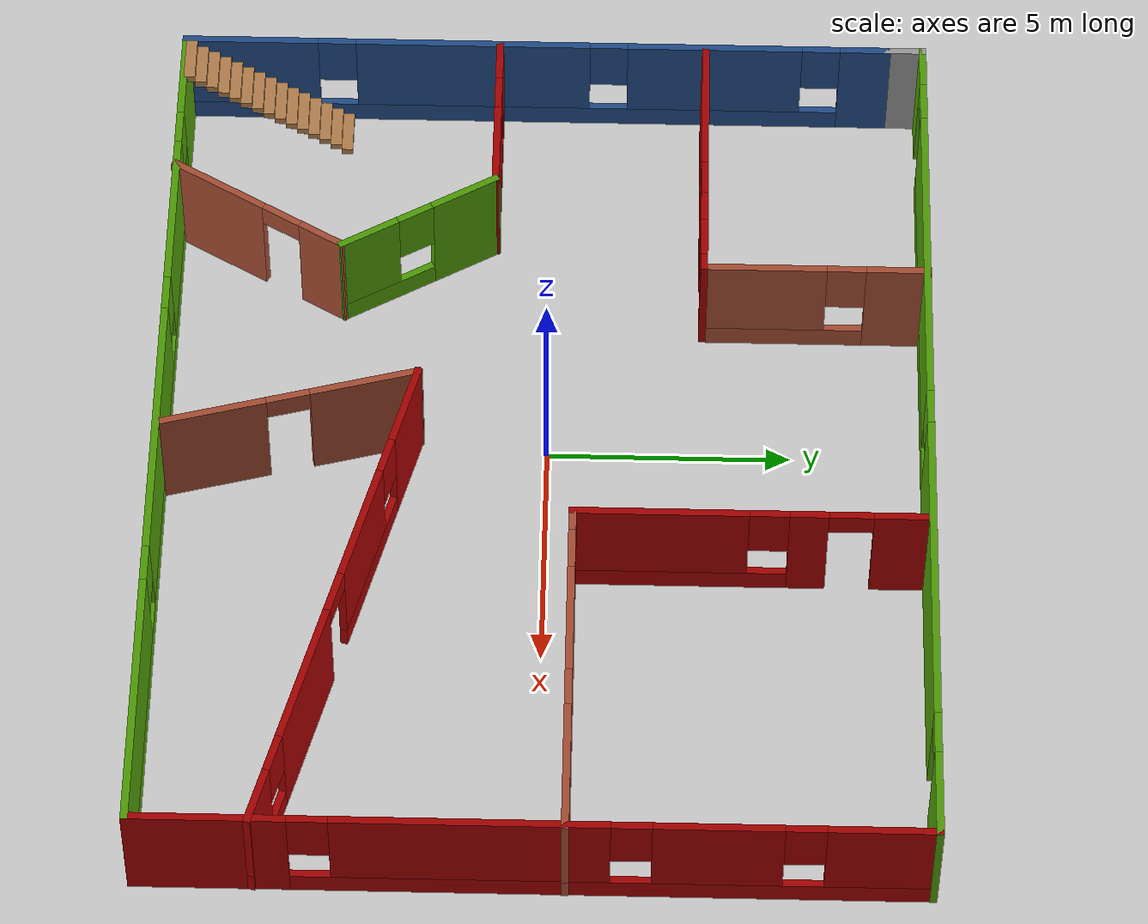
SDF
<sdf version="1.6">
 <world name="default">
  <model name="ground_plane">
   <static>1</static>
   <link name="link">
    <collision name="collision">
     <geometry><plane><normal>0 0 1</normal><size>100 100</size></plane></geometry>
     <surface>
      <contact><collide_bitmask>65535</collide_bitmask></contact>
      <friction><ode><mu>100</mu><mu2>50</mu2></ode></friction>
     </surface>
    </collision>
    <visual name="visual">
     <cast_shadows>0</cast_shadows>
     <geometry><plane><normal>0 0 1</normal><size>100 100</size></plane></geometry>
     <material>
      <script><uri>file://media/materials/scripts/gazebo.material</uri><name>Gazebo/Grey</name></script>
     </material>
    </visual>
   </link>
  </model>
  <model name="my_building">
   <pose>0.76926 -0.055675 0 0 -0 0</pose>
   <link name="Stairs_0">
    <visual name="Stairs_0_Visual_0">
     <pose>-9.13634 -4.39874 0.083333 0 -0 0</pose>
     <geometry><box><size>1 0.233333 0.166667</size></box></geometry>
     <material>
      <script><uri>file://media/materials/scripts/gazebo.material</uri><name>Gazebo/Wood</name></script>
      <ambient>0.360784 0.207843 0.4 1</ambient>
     </material>
     <meta><layer>0</layer></meta>
    </visual>
    <collision name="Stairs_0_Collision_0">
     <geometry><box><size>1 0.233333 0.166667</size></box></geometry>
     <pose>-9.13634 -4.39874 0.083333 0 -0 0</pose>
    </collision>
    <visual name="Stairs_0_Visual_1">
     <pose>-9.13634 -4.63207 0.25 0 -0 0</pose>
     <geometry><box><size>1 0.233333 0.166667</size></box></geometry>
     <material>
      <script><uri>file://media/materials/scripts/gazebo.material</uri><name>Gazebo/Wood</name></script>
      <ambient>0.360784 0.207843 0.4 1</ambient>
     </material>
     <meta><layer>0</layer></meta>
    </visual>
    <collision name="Stairs_0_Collision_1">
     <geometry><box><size>1 0.233333 0.166667</size></box></geometry>
     <pose>-9.13634 -4.63207 0.25 0 -0 0</pose>
    </collision>
    <visual name="Stairs_0_Visual_2">
     <pose>-9.13634 -4.8654 0.416667 0 -0 0</pose>
     <geometry><box><size>1 0.233333 0.166667</size></box></geometry>
     <material>
      <script><uri>file://media/materials/scripts/gazebo.material</uri><name>Gazebo/Wood</name></script>
      <ambient>0.360784 0.207843 0.4 1</ambient>
     </material>
     <meta><layer>0</layer></meta>
    </visual>
    <collision name="Stairs_0_Collision_2">
     <geometry><box><size>1 0.233333 0.166667</size></box></geometry>
     <pose>-9.13634 -4.8654 0.416667 0 -0 0</pose>
    </collision>
    <visual name="Stairs_0_Visual_3">
     <pose>-9.13634 -5.09873 0.583333 0 -0 0</pose>
     <geometry><box><size>1 0.233333 0.166667</size></box></geometry>
     <material>
      <script><uri>file://media/materials/scripts/gazebo.material</uri><name>Gazebo/Wood</name></script>
      <ambient>0.360784 0.207843 0.4 1</ambient>
     </material>
     <meta><layer>0</layer></meta>
    </visual>
    <collision name="Stairs_0_Collision_3">
     <geometry><box><size>1 0.233333 0.166667</size></box></geometry>
     <pose>-9.13634 -5.09873 0.583333 0 -0 0</pose>
    </collision>
    <visual name="Stairs_0_Visual_4">
     <pose>-9.13634 -5.33207 0.75 0 -0 0</pose>
     <geometry><box><size>1 0.233333 0.166667</size></box></geometry>
     <material>
      <script><uri>file://media/materials/scripts/gazebo.material</uri><name>Gazebo/Wood</name></script>
      <ambient>0.360784 0.207843 0.4 1</ambient>
     </material>
     <meta><layer>0</layer></meta>
    </visual>
    <collision name="Stairs_0_Collision_4">
     <geometry><box><size>1 0.233333 0.166667</size></box></geometry>
     <pose>-9.13634 -5.33207 0.75 0 -0 0</pose>
    </collision>
    <visual name="Stairs_0_Visual_5">
     <pose>-9.13634 -5.5654 0.916667 0 -0 0</pose>
     <geometry><box><size>1 0.233333 0.166667</size></box></geometry>
     <material>
      <script><uri>file://media/materials/scripts/gazebo.material</uri><name>Gazebo/Wood</name></script>
      <ambient>0.360784 0.207843 0.4 1</ambient>
     </material>
     <meta><layer>0</layer></meta>
    </visual>
    <collision name="Stairs_0_Collision_5">
     <geometry><box><size>1 0.233333 0.166667</size></box></geometry>
     <pose>-9.13634 -5.5654 0.916667 0 -0 0</pose>
    </collision>
    <visual name="Stairs_0_Visual_6">
     <pose>-9.13634 -5.79874 1.08333 0 -0 0</pose>
     <geometry><box><size>1 0.233333 0.166667</size></box></geometry>
     <material>
      <script><uri>file://media/materials/scripts/gazebo.material</uri><name>Gazebo/Wood</name></script>
      <ambient>0.360784 0.207843 0.4 1</ambient>
     </material>
     <meta><layer>0</layer></meta>
    </visual>
    <collision name="Stairs_0_Collision_6">
     <geometry><box><size>1 0.233333 0.166667</size></box></geometry>
     <pose>-9.13634 -5.79874 1.08333 0 -0 0</pose>
    </collision>
    <visual name="Stairs_0_Visual_7">
     <pose>-9.13634 -6.03207 1.25 0 -0 0</pose>
     <geometry><box><size>1 0.233333 0.166667</size></box></geometry>
     <material>
      <script><uri>file://media/materials/scripts/gazebo.material</uri><name>Gazebo/Wood</name></script>
      <ambient>0.360784 0.207843 0.4 1</ambient>
     </material>
     <meta><layer>0</layer></meta>
    </visual>
    <collision name="Stairs_0_Collision_7">
     <geometry><box><size>1 0.233333 0.166667</size></box></geometry>
     <pose>-9.13634 -6.03207 1.25 0 -0 0</pose>
    </collision>
    <visual name="Stairs_0_Visual_8">
     <pose>-9.13634 -6.2654 1.41667 0 -0 0</pose>
     <geometry><box><size>1 0.233333 0.166667</size></box></geometry>
     <material>
      <script><uri>file://media/materials/scripts/gazebo.material</uri><name>Gazebo/Wood</name></script>
      <ambient>0.360784 0.207843 0.4 1</ambient>
     </material>
     <meta><layer>0</layer></meta>
    </visual>
    <collision name="Stairs_0_Collision_8">
     <geometry><box><size>1 0.233333 0.166667</size></box></geometry>
     <pose>-9.13634 -6.2654 1.41667 0 -0 0</pose>
    </collision>
    <visual name="Stairs_0_Visual_9">
     <pose>-9.13634 -6.49873 1.58333 0 -0 0</pose>
     <geometry><box><size>1 0.233333 0.166667</size></box></geometry>
     <material>
      <script><uri>file://media/materials/scripts/gazebo.material</uri><name>Gazebo/Wood</name></script>
      <ambient>0.360784 0.207843 0.4 1</ambient>
     </material>
     <meta><layer>0</layer></meta>
    </visual>
    <collision name="Stairs_0_Collision_9">
     <geometry><box><size>1 0.233333 0.166667</size></box></geometry>
     <pose>-9.13634 -6.49873 1.58333 0 -0 0</pose>
    </collision>
    <visual name="Stairs_0_Visual_10">
     <pose>-9.13634 -6.73207 1.75 0 -0 0</pose>
     <geometry><box><size>1 0.233333 0.166667</size></box></geometry>
     <material>
      <script><uri>file://media/materials/scripts/gazebo.material</uri><name>Gazebo/Wood</name></script>
      <ambient>0.360784 0.207843 0.4 1</ambient>
     </material>
     <meta><layer>0</layer></meta>
    </visual>
    <collision name="Stairs_0_Collision_10">
     <geometry><box><size>1 0.233333 0.166667</size></box></geometry>
     <pose>-9.13634 -6.73207 1.75 0 -0 0</pose>
    </collision>
    <visual name="Stairs_0_Visual_11">
     <pose>-9.13634 -6.9654 1.91667 0 -0 0</pose>
     <geometry><box><size>1 0.233333 0.166667</size></box></geometry>
     <material>
      <script><uri>file://media/materials/scripts/gazebo.material</uri><name>Gazebo/Wood</name></script>
      <ambient>0.360784 0.207843 0.4 1</ambient>
     </material>
     <meta><layer>0</layer></meta>
    </visual>
    <collision name="Stairs_0_Collision_11">
     <geometry><box><size>1 0.233333 0.166667</size></box></geometry>
     <pose>-9.13634 -6.9654 1.91667 0 -0 0</pose>
    </collision>
    <visual name="Stairs_0_Visual_12">
     <pose>-9.13634 -7.19874 2.08333 0 -0 0</pose>
     <geometry><box><size>1 0.233333 0.166667</size></box></geometry>
     <material>
      <script><uri>file://media/materials/scripts/gazebo.material</uri><name>Gazebo/Wood</name></script>
      <ambient>0.360784 0.207843 0.4 1</ambient>
     </material>
     <meta><layer>0</layer></meta>
    </visual>
    <collision name="Stairs_0_Collision_12">
     <geometry><box><size>1 0.233333 0.166667</size></box></geometry>
     <pose>-9.13634 -7.19874 2.08333 0 -0 0</pose>
    </collision>
    <visual name="Stairs_0_Visual_13">
     <pose>-9.13634 -7.43207 2.25 0 -0 0</pose>
     <geometry><box><size>1 0.233333 0.166667</size></box></geometry>
     <material>
      <script><uri>file://media/materials/scripts/gazebo.material</uri><name>Gazebo/Wood</name></script>
      <ambient>0.360784 0.207843 0.4 1</ambient>
     </material>
     <meta><layer>0</layer></meta>
    </visual>
    <collision name="Stairs_0_Collision_13">
     <geometry><box><size>1 0.233333 0.166667</size></box></geometry>
     <pose>-9.13634 -7.43207 2.25 0 -0 0</pose>
    </collision>
    <visual name="Stairs_0_Visual_14">
     <pose>-9.13634 -7.6654 2.41667 0 -0 0</pose>
     <geometry><box><size>1 0.233333 0.166667</size></box></geometry>
     <material>
      <script><uri>file://media/materials/scripts/gazebo.material</uri><name>Gazebo/Wood</name></script>
      <ambient>0.360784 0.207843 0.4 1</ambient>
     </material>
     <meta><layer>0</layer></meta>
    </visual>
    <collision name="Stairs_0_Collision_14">
     <geometry><box><size>1 0.233333 0.166667</size></box></geometry>
     <pose>-9.13634 -7.6654 2.41667 0 -0 0</pose>
    </collision>
   </link>
   <link name="Wall_11">
    <pose>-9.6935 -0.366888 0 0 -0 -1.5708</pose>
    <visual name="Wall_11_Visual_0">
     <pose>-6.96463 0 1.25 0 -0 0</pose>
     <geometry><box><size>1.07073 0.15 2.5</size></box></geometry>
     <material>
      <script><uri>file://media/materials/scripts/gazebo.material</uri><name>Gazebo/Grey</name></script>
      <ambient>0.12549 0.290196 0.529412 1</ambient>
     </material>
     <meta><layer>0</layer></meta>
    </visual>
    <collision name="Wall_11_Collision_0">
     <geometry><box><size>1.07073 0.15 2.5</size></box></geometry>
     <pose>-6.96463 0 1.25 0 -0 0</pose>
    </collision>
    <visual name="Wall_11_Visual_1">
     <pose>0.535368 0 0.25 0 -0 0</pose>
     <geometry><box><size>13.9293 0.15 0.5</size></box></geometry>
     <material>
      <script><uri>file://media/materials/scripts/gazebo.material</uri><name>Gazebo/Grey</name></script>
      <ambient>0.12549 0.290196 0.529412 1</ambient>
     </material>
     <meta><layer>0</layer></meta>
    </visual>
    <collision name="Wall_11_Collision_1">
     <geometry><box><size>13.9293 0.15 0.5</size></box></geometry>
     <pose>0.535368 0 0.25 0 -0 0</pose>
    </collision>
    <visual name="Wall_11_Visual_2">
     <pose>-3.78462 0 1.5 0 -0 0</pose>
     <geometry><box><size>3.68928 0.15 2</size></box></geometry>
     <material>
      <script><uri>file://media/materials/scripts/gazebo.material</uri><name>Gazebo/Grey</name></script>
      <ambient>0.12549 0.290196 0.529412 1</ambient>
     </material>
     <meta><layer>0</layer></meta>
    </visual>
    <collision name="Wall_11_Collision_2">
     <geometry><box><size>3.68928 0.15 2</size></box></geometry>
     <pose>-3.78462 0 1.5 0 -0 0</pose>
    </collision>
    <visual name="Wall_11_Visual_3">
     <pose>1.34307 0 1.5 0 -0 0</pose>
     <geometry><box><size>4.9661 0.15 2</size></box></geometry>
     <material>
      <script><uri>file://media/materials/scripts/gazebo.material</uri><name>Gazebo/Grey</name></script>
      <ambient>0.12549 0.290196 0.529412 1</ambient>
     </material>
     <meta><layer>0</layer></meta>
    </visual>
    <collision name="Wall_11_Collision_3">
     <geometry><box><size>4.9661 0.15 2</size></box></geometry>
     <pose>1.34307 0 1.5 0 -0 0</pose>
    </collision>
    <visual name="Wall_11_Visual_4">
     <pose>6.06306 0 1.5 0 -0 0</pose>
     <geometry><box><size>2.87388 0.15 2</size></box></geometry>
     <material>
      <script><uri>file://media/materials/scripts/gazebo.material</uri><name>Gazebo/Grey</name></script>
      <ambient>0.12549 0.290196 0.529412 1</ambient>
     </material>
     <meta><layer>0</layer></meta>
    </visual>
    <collision name="Wall_11_Collision_4">
     <geometry><box><size>2.87388 0.15 2</size></box></geometry>
     <pose>6.06306 0 1.5 0 -0 0</pose>
    </collision>
    <visual name="Wall_11_Visual_5">
     <pose>-6.02926 0 1.9 0 -0 0</pose>
     <geometry><box><size>0.8 0.15 1.2</size></box></geometry>
     <material>
      <script><uri>file://media/materials/scripts/gazebo.material</uri><name>Gazebo/Grey</name></script>
      <ambient>0.12549 0.290196 0.529412 1</ambient>
     </material>
     <meta><layer>0</layer></meta>
    </visual>
    <collision name="Wall_11_Collision_5">
     <geometry><box><size>0.8 0.15 1.2</size></box></geometry>
     <pose>-6.02926 0 1.9 0 -0 0</pose>
    </collision>
    <visual name="Wall_11_Visual_6">
     <pose>-1.53998 0 1.9 0 -0 0</pose>
     <geometry><box><size>0.8 0.15 1.2</size></box></geometry>
     <material>
      <script><uri>file://media/materials/scripts/gazebo.material</uri><name>Gazebo/Grey</name></script>
      <ambient>0.12549 0.290196 0.529412 1</ambient>
     </material>
     <meta><layer>0</layer></meta>
    </visual>
    <collision name="Wall_11_Collision_6">
     <geometry><box><size>0.8 0.15 1.2</size></box></geometry>
     <pose>-1.53998 0 1.9 0 -0 0</pose>
    </collision>
    <visual name="Wall_11_Visual_7">
     <pose>4.22612 0 1.9 0 -0 0</pose>
     <geometry><box><size>0.8 0.15 1.2</size></box></geometry>
     <material>
      <script><uri>file://media/materials/scripts/gazebo.material</uri><name>Gazebo/Grey</name></script>
      <ambient>0.12549 0.290196 0.529412 1</ambient>
     </material>
     <meta><layer>0</layer></meta>
    </visual>
    <collision name="Wall_11_Collision_7">
     <geometry><box><size>0.8 0.15 1.2</size></box></geometry>
     <pose>4.22612 0 1.9 0 -0 0</pose>
    </collision>
   </link>
   <link name="Wall_12">
    <pose>-0.018495 -7.79189 0 0 -0 0</pose>
    <visual name="Wall_12_Visual_0">
     <pose>-8.71079 0 1.25 0 -0 0</pose>
     <geometry><box><size>2.07843 0.15 2.5</size></box></geometry>
     <material>
      <script><uri>file://media/materials/scripts/gazebo.material</uri><name>Gazebo/Grey</name></script>
      <ambient>0.305882 0.603922 0.0235294 1</ambient>
     </material>
     <meta><layer>0</layer></meta>
    </visual>
    <collision name="Wall_12_Collision_0">
     <geometry><box><size>2.07843 0.15 2.5</size></box></geometry>
     <pose>-8.71079 0 1.25 0 -0 0</pose>
    </collision>
    <visual name="Wall_12_Visual_1">
     <pose>1.03921 0 0.25 0 -0 0</pose>
     <geometry><box><size>17.4216 0.15 0.5</size></box></geometry>
     <material>
      <script><uri>file://media/materials/scripts/gazebo.material</uri><name>Gazebo/Grey</name></script>
      <ambient>0.305882 0.603922 0.0235294 1</ambient>
     </material>
     <meta><layer>0</layer></meta>
    </visual>
    <collision name="Wall_12_Collision_1">
     <geometry><box><size>17.4216 0.15 0.5</size></box></geometry>
     <pose>1.03921 0 0.25 0 -0 0</pose>
    </collision>
    <visual name="Wall_12_Visual_2">
     <pose>-5.09053 0 1.5 0 -0 0</pose>
     <geometry><box><size>3.56208 0.15 2</size></box></geometry>
     <material>
      <script><uri>file://media/materials/scripts/gazebo.material</uri><name>Gazebo/Grey</name></script>
      <ambient>0.305882 0.603922 0.0235294 1</ambient>
     </material>
     <meta><layer>0</layer></meta>
    </visual>
    <collision name="Wall_12_Collision_2">
     <geometry><box><size>3.56208 0.15 2</size></box></geometry>
     <pose>-5.09053 0 1.5 0 -0 0</pose>
    </collision>
    <visual name="Wall_12_Visual_3">
     <pose>0.449657 0 1.5 0 -0 0</pose>
     <geometry><box><size>5.9183 0.15 2</size></box></geometry>
     <material>
      <script><uri>file://media/materials/scripts/gazebo.material</uri><name>Gazebo/Grey</name></script>
      <ambient>0.305882 0.603922 0.0235294 1</ambient>
     </material>
     <meta><layer>0</layer></meta>
    </visual>
    <collision name="Wall_12_Collision_3">
     <geometry><box><size>5.9183 0.15 2</size></box></geometry>
     <pose>0.449657 0 1.5 0 -0 0</pose>
    </collision>
    <visual name="Wall_12_Visual_4">
     <pose>6.9794 0 1.5 0 -0 0</pose>
     <geometry><box><size>5.54119 0.15 2</size></box></geometry>
     <material>
      <script><uri>file://media/materials/scripts/gazebo.material</uri><name>Gazebo/Grey</name></script>
      <ambient>0.305882 0.603922 0.0235294 1</ambient>
     </material>
     <meta><layer>0</layer></meta>
    </visual>
    <collision name="Wall_12_Collision_4">
     <geometry><box><size>5.54119 0.15 2</size></box></geometry>
     <pose>6.9794 0 1.5 0 -0 0</pose>
    </collision>
    <visual name="Wall_12_Visual_5">
     <pose>-7.27157 0 1.9 0 -0 0</pose>
     <geometry><box><size>0.8 0.15 1.2</size></box></geometry>
     <material>
      <script><uri>file://media/materials/scripts/gazebo.material</uri><name>Gazebo/Grey</name></script>
      <ambient>0.305882 0.603922 0.0235294 1</ambient>
     </material>
     <meta><layer>0</layer></meta>
    </visual>
    <collision name="Wall_12_Collision_5">
     <geometry><box><size>0.8 0.15 1.2</size></box></geometry>
     <pose>-7.27157 0 1.9 0 -0 0</pose>
    </collision>
    <visual name="Wall_12_Visual_6">
     <pose>-2.90949 0 1.9 0 -0 0</pose>
     <geometry><box><size>0.8 0.15 1.2</size></box></geometry>
     <material>
      <script><uri>file://media/materials/scripts/gazebo.material</uri><name>Gazebo/Grey</name></script>
      <ambient>0.305882 0.603922 0.0235294 1</ambient>
     </material>
     <meta><layer>0</layer></meta>
    </visual>
    <collision name="Wall_12_Collision_6">
     <geometry><box><size>0.8 0.15 1.2</size></box></geometry>
     <pose>-2.90949 0 1.9 0 -0 0</pose>
    </collision>
    <visual name="Wall_12_Visual_7">
     <pose>3.80881 0 1.9 0 -0 0</pose>
     <geometry><box><size>0.8 0.15 1.2</size></box></geometry>
     <material>
      <script><uri>file://media/materials/scripts/gazebo.material</uri><name>Gazebo/Grey</name></script>
      <ambient>0.305882 0.603922 0.0235294 1</ambient>
     </material>
     <meta><layer>0</layer></meta>
    </visual>
    <collision name="Wall_12_Collision_7">
     <geometry><box><size>0.8 0.15 1.2</size></box></geometry>
     <pose>3.80881 0 1.9 0 -0 0</pose>
    </collision>
   </link>
   <link name="Wall_13">
    <pose>9.6565 0.008112 0 0 -0 1.5708</pose>
    <visual name="Wall_13_Visual_0">
     <pose>-6.28991 0 1.25 0 -0 0</pose>
     <geometry><box><size>3.17019 0.15 2.5</size></box></geometry>
     <material>
      <script><uri>file://media/materials/scripts/gazebo.material</uri><name>Gazebo/Grey</name></script>
      <ambient>0.643137 0 0 1</ambient>
     </material>
     <meta><layer>0</layer></meta>
    </visual>
    <collision name="Wall_13_Collision_0">
     <geometry><box><size>3.17019 0.15 2.5</size></box></geometry>
     <pose>-6.28991 0 1.25 0 -0 0</pose>
    </collision>
    <visual name="Wall_13_Visual_1">
     <pose>1.58509 0 0.25 0 -0 0</pose>
     <geometry><box><size>12.5798 0.15 0.5</size></box></geometry>
     <material>
      <script><uri>file://media/materials/scripts/gazebo.material</uri><name>Gazebo/Grey</name></script>
      <ambient>0.643137 0 0 1</ambient>
     </material>
     <meta><layer>0</layer></meta>
    </visual>
    <collision name="Wall_13_Collision_1">
     <geometry><box><size>12.5798 0.15 0.5</size></box></geometry>
     <pose>1.58509 0 0.25 0 -0 0</pose>
    </collision>
    <visual name="Wall_13_Visual_2">
     <pose>-1.19981 0 1.5 0 -0 0</pose>
     <geometry><box><size>5.41 0.15 2</size></box></geometry>
     <material>
      <script><uri>file://media/materials/scripts/gazebo.material</uri><name>Gazebo/Grey</name></script>
      <ambient>0.643137 0 0 1</ambient>
     </material>
     <meta><layer>0</layer></meta>
    </visual>
    <collision name="Wall_13_Collision_2">
     <geometry><box><size>5.41 0.15 2</size></box></geometry>
     <pose>-1.19981 0 1.5 0 -0 0</pose>
    </collision>
    <visual name="Wall_13_Visual_3">
     <pose>3.578 0 1.5 0 -0 0</pose>
     <geometry><box><size>2.54562 0.15 2</size></box></geometry>
     <material>
      <script><uri>file://media/materials/scripts/gazebo.material</uri><name>Gazebo/Grey</name></script>
      <ambient>0.643137 0 0 1</ambient>
     </material>
     <meta><layer>0</layer></meta>
    </visual>
    <collision name="Wall_13_Collision_3">
     <geometry><box><size>2.54562 0.15 2</size></box></geometry>
     <pose>3.578 0 1.5 0 -0 0</pose>
    </collision>
    <visual name="Wall_13_Visual_4">
     <pose>6.76291 0 1.5 0 -0 0</pose>
     <geometry><box><size>2.22418 0.15 2</size></box></geometry>
     <material>
      <script><uri>file://media/materials/scripts/gazebo.material</uri><name>Gazebo/Grey</name></script>
      <ambient>0.643137 0 0 1</ambient>
     </material>
     <meta><layer>0</layer></meta>
    </visual>
    <collision name="Wall_13_Collision_4">
     <geometry><box><size>2.22418 0.15 2</size></box></geometry>
     <pose>6.76291 0 1.5 0 -0 0</pose>
    </collision>
    <visual name="Wall_13_Visual_5">
     <pose>-4.30481 0 1.9 0 -0 0</pose>
     <geometry><box><size>0.8 0.15 1.2</size></box></geometry>
     <material>
      <script><uri>file://media/materials/scripts/gazebo.material</uri><name>Gazebo/Grey</name></script>
      <ambient>0.643137 0 0 1</ambient>
     </material>
     <meta><layer>0</layer></meta>
    </visual>
    <collision name="Wall_13_Collision_5">
     <geometry><box><size>0.8 0.15 1.2</size></box></geometry>
     <pose>-4.30481 0 1.9 0 -0 0</pose>
    </collision>
    <visual name="Wall_13_Visual_6">
     <pose>1.90519 0 1.9 0 -0 0</pose>
     <geometry><box><size>0.8 0.15 1.2</size></box></geometry>
     <material>
      <script><uri>file://media/materials/scripts/gazebo.material</uri><name>Gazebo/Grey</name></script>
      <ambient>0.643137 0 0 1</ambient>
     </material>
     <meta><layer>0</layer></meta>
    </visual>
    <collision name="Wall_13_Collision_6">
     <geometry><box><size>0.8 0.15 1.2</size></box></geometry>
     <pose>1.90519 0 1.9 0 -0 0</pose>
    </collision>
    <visual name="Wall_13_Visual_7">
     <pose>5.25082 0 1.9 0 -0 0</pose>
     <geometry><box><size>0.8 0.15 1.2</size></box></geometry>
     <material>
      <script><uri>file://media/materials/scripts/gazebo.material</uri><name>Gazebo/Grey</name></script>
      <ambient>0.643137 0 0 1</ambient>
     </material>
     <meta><layer>0</layer></meta>
    </visual>
    <collision name="Wall_13_Collision_7">
     <geometry><box><size>0.8 0.15 1.2</size></box></geometry>
     <pose>5.25082 0 1.9 0 -0 0</pose>
    </collision>
   </link>
   <link name="Wall_14">
    <pose>-0.018495 7.80811 0 0 -0 3.14159</pose>
    <visual name="Wall_14_Visual_0">
     <pose>-8.8108 0 1.25 0 -0 0</pose>
     <geometry><box><size>1.8784 0.15 2.5</size></box></geometry>
     <material>
      <script><uri>file://media/materials/scripts/gazebo.material</uri><name>Gazebo/Grey</name></script>
      <ambient>0.305882 0.603922 0.0235294 1</ambient>
     </material>
     <meta><layer>0</layer></meta>
    </visual>
    <collision name="Wall_14_Collision_0">
     <geometry><box><size>1.8784 0.15 2.5</size></box></geometry>
     <pose>-8.8108 0 1.25 0 -0 0</pose>
    </collision>
    <visual name="Wall_14_Visual_1">
     <pose>-3.49632 0 1.25 0 -0 0</pose>
     <geometry><box><size>6.95057 0.15 2.5</size></box></geometry>
     <material>
      <script><uri>file://media/materials/scripts/gazebo.material</uri><name>Gazebo/Grey</name></script>
      <ambient>0.305882 0.603922 0.0235294 1</ambient>
     </material>
     <meta><layer>0</layer></meta>
    </visual>
    <collision name="Wall_14_Collision_1">
     <geometry><box><size>6.95057 0.15 2.5</size></box></geometry>
     <pose>-3.49632 0 1.25 0 -0 0</pose>
    </collision>
    <visual name="Wall_14_Visual_2">
     <pose>9.25613 0 1.25 0 -0 0</pose>
     <geometry><box><size>0.987737 0.15 2.5</size></box></geometry>
     <material>
      <script><uri>file://media/materials/scripts/gazebo.material</uri><name>Gazebo/Grey</name></script>
      <ambient>0.305882 0.603922 0.0235294 1</ambient>
     </material>
     <meta><layer>0</layer></meta>
    </visual>
    <collision name="Wall_14_Collision_2">
     <geometry><box><size>0.987737 0.15 2.5</size></box></geometry>
     <pose>9.25613 0 1.25 0 -0 0</pose>
    </collision>
    <visual name="Wall_14_Visual_3">
     <pose>3.92061 0 0.25 0 -0 0</pose>
     <geometry><box><size>7.8833 0.15 0.5</size></box></geometry>
     <material>
      <script><uri>file://media/materials/scripts/gazebo.material</uri><name>Gazebo/Grey</name></script>
      <ambient>0.305882 0.603922 0.0235294 1</ambient>
     </material>
     <meta><layer>0</layer></meta>
    </visual>
    <collision name="Wall_14_Collision_3">
     <geometry><box><size>7.8833 0.15 0.5</size></box></geometry>
     <pose>3.92061 0 0.25 0 -0 0</pose>
    </collision>
    <visual name="Wall_14_Visual_4">
     <pose>4.32061 0 1.5 0 -0 0</pose>
     <geometry><box><size>7.0833 0.15 2</size></box></geometry>
     <material>
      <script><uri>file://media/materials/scripts/gazebo.material</uri><name>Gazebo/Grey</name></script>
      <ambient>0.305882 0.603922 0.0235294 1</ambient>
     </material>
     <meta><layer>0</layer></meta>
    </visual>
    <collision name="Wall_14_Collision_4">
     <geometry><box><size>7.0833 0.15 2</size></box></geometry>
     <pose>4.32061 0 1.5 0 -0 0</pose>
    </collision>
    <visual name="Wall_14_Visual_5">
     <pose>0.378965 0 1.9 0 -0 0</pose>
     <geometry><box><size>0.8 0.15 1.2</size></box></geometry>
     <material>
      <script><uri>file://media/materials/scripts/gazebo.material</uri><name>Gazebo/Grey</name></script>
      <ambient>0.305882 0.603922 0.0235294 1</ambient>
     </material>
     <meta><layer>0</layer></meta>
    </visual>
    <collision name="Wall_14_Collision_5">
     <geometry><box><size>0.8 0.15 1.2</size></box></geometry>
     <pose>0.378965 0 1.9 0 -0 0</pose>
    </collision>
    <visual name="Wall_14_Visual_6">
     <pose>-7.4216 0 2.25 0 -0 0</pose>
     <geometry><box><size>0.9 0.15 0.5</size></box></geometry>
     <material>
      <script><uri>file://media/materials/scripts/gazebo.material</uri><name>Gazebo/Grey</name></script>
      <ambient>0.305882 0.603922 0.0235294 1</ambient>
     </material>
     <meta><layer>0</layer></meta>
    </visual>
    <collision name="Wall_14_Collision_6">
     <geometry><box><size>0.9 0.15 0.5</size></box></geometry>
     <pose>-7.4216 0 2.25 0 -0 0</pose>
    </collision>
    <visual name="Wall_14_Visual_7">
     <pose>8.31226 0 2.25 0 -0 0</pose>
     <geometry><box><size>0.9 0.15 0.5</size></box></geometry>
     <material>
      <script><uri>file://media/materials/scripts/gazebo.material</uri><name>Gazebo/Grey</name></script>
      <ambient>0.305882 0.603922 0.0235294 1</ambient>
     </material>
     <meta><layer>0</layer></meta>
    </visual>
    <collision name="Wall_14_Collision_7">
     <geometry><box><size>0.9 0.15 0.5</size></box></geometry>
     <pose>8.31226 0 2.25 0 -0 0</pose>
    </collision>
   </link>
   <link name="Wall_16">
    <collision name="Wall_16_Collision">
     <geometry><box><size>0.9 0.15 2.5</size></box></geometry>
     <pose>0 0 1.25 0 -0 0</pose>
    </collision>
    <visual name="Wall_16_Visual">
     <pose>0 0 1.25 0 -0 0</pose>
     <geometry><box><size>0.9 0.15 2.5</size></box></geometry>
     <material>
      <script><uri>file://media/materials/scripts/gazebo.material</uri><name>Gazebo/Grey</name></script>
      <ambient>1 1 1 1</ambient>
     </material>
     <meta><layer>0</layer></meta>
    </visual>
    <pose>-9.6935 7.43311 0 0 -0 -1.5708</pose>
   </link>
   <link name="Wall_18">
    <pose>-3.83988 5.52664 0 0 -0 -1.5708</pose>
    <visual name="Wall_18_Visual_0">
     <pose>-1.70027 0 1.25 0 -0 0</pose>
     <geometry><box><size>1.34946 0.15 2.5</size></box></geometry>
     <material>
      <script><uri>file://media/materials/scripts/gazebo.material</uri><name>Gazebo/Bricks</name></script>
      <ambient>0.12549 0.290196 0.529412 1</ambient>
     </material>
     <meta><layer>0</layer></meta>
    </visual>
    <collision name="Wall_18_Collision_0">
     <geometry><box><size>1.34946 0.15 2.5</size></box></geometry>
     <pose>-1.70027 0 1.25 0 -0 0</pose>
    </collision>
    <visual name="Wall_18_Visual_1">
     <pose>0.674728 0 0.25 0 -0 0</pose>
     <geometry><box><size>3.40054 0.15 0.5</size></box></geometry>
     <material>
      <script><uri>file://media/materials/scripts/gazebo.material</uri><name>Gazebo/Bricks</name></script>
      <ambient>0.12549 0.290196 0.529412 1</ambient>
     </material>
     <meta><layer>0</layer></meta>
    </visual>
    <collision name="Wall_18_Collision_1">
     <geometry><box><size>3.40054 0.15 0.5</size></box></geometry>
     <pose>0.674728 0 0.25 0 -0 0</pose>
    </collision>
    <visual name="Wall_18_Visual_2">
     <pose>1.07473 0 1.5 0 -0 0</pose>
     <geometry><box><size>2.60054 0.15 2</size></box></geometry>
     <material>
      <script><uri>file://media/materials/scripts/gazebo.material</uri><name>Gazebo/Bricks</name></script>
      <ambient>0.12549 0.290196 0.529412 1</ambient>
     </material>
     <meta><layer>0</layer></meta>
    </visual>
    <collision name="Wall_18_Collision_2">
     <geometry><box><size>2.60054 0.15 2</size></box></geometry>
     <pose>1.07473 0 1.5 0 -0 0</pose>
    </collision>
    <visual name="Wall_18_Visual_3">
     <pose>-0.625544 0 1.9 0 -0 0</pose>
     <geometry><box><size>0.8 0.15 1.2</size></box></geometry>
     <material>
      <script><uri>file://media/materials/scripts/gazebo.material</uri><name>Gazebo/Bricks</name></script>
      <ambient>0.12549 0.290196 0.529412 1</ambient>
     </material>
     <meta><layer>0</layer></meta>
    </visual>
    <collision name="Wall_18_Collision_3">
     <geometry><box><size>0.8 0.15 1.2</size></box></geometry>
     <pose>-0.625544 0 1.9 0 -0 0</pose>
    </collision>
   </link>
   <link name="Wall_19">
    <pose>-6.76488 3.22664 0 0 -0 3.14159</pose>
    <visual name="Wall_19_Visual_0">
     <pose>-2.79615 0 1.25 0 -0 0</pose>
     <geometry><box><size>0.407708 0.15 2.5</size></box></geometry>
     <material>
      <script><uri>file://media/materials/scripts/gazebo.material</uri><name>Gazebo/Grey</name></script>
      <ambient>0.643137 0 0 1</ambient>
     </material>
     <meta><layer>0</layer></meta>
    </visual>
    <collision name="Wall_19_Collision_0">
     <geometry><box><size>0.407708 0.15 2.5</size></box></geometry>
     <pose>-2.79615 0 1.25 0 -0 0</pose>
    </collision>
    <visual name="Wall_19_Visual_1">
     <pose>-1.33529 0 1.25 0 -0 0</pose>
     <geometry><box><size>0.714 0.15 2.5</size></box></geometry>
     <material>
      <script><uri>file://media/materials/scripts/gazebo.material</uri><name>Gazebo/Grey</name></script>
      <ambient>0.643137 0 0 1</ambient>
     </material>
     <meta><layer>0</layer></meta>
    </visual>
    <collision name="Wall_19_Collision_1">
     <geometry><box><size>0.714 0.15 2.5</size></box></geometry>
     <pose>-1.33529 0 1.25 0 -0 0</pose>
    </collision>
    <visual name="Wall_19_Visual_2">
     <pose>1.01085 0 0.25 0 -0 0</pose>
     <geometry><box><size>3.97829 0.15 0.5</size></box></geometry>
     <material>
      <script><uri>file://media/materials/scripts/gazebo.material</uri><name>Gazebo/Grey</name></script>
      <ambient>0.643137 0 0 1</ambient>
     </material>
     <meta><layer>0</layer></meta>
    </visual>
    <collision name="Wall_19_Collision_2">
     <geometry><box><size>3.97829 0.15 0.5</size></box></geometry>
     <pose>1.01085 0 0.25 0 -0 0</pose>
    </collision>
    <visual name="Wall_19_Visual_3">
     <pose>1.41085 0 1.5 0 -0 0</pose>
     <geometry><box><size>3.17829 0.15 2</size></box></geometry>
     <material>
      <script><uri>file://media/materials/scripts/gazebo.material</uri><name>Gazebo/Grey</name></script>
      <ambient>0.643137 0 0 1</ambient>
     </material>
     <meta><layer>0</layer></meta>
    </visual>
    <collision name="Wall_19_Collision_3">
     <geometry><box><size>3.17829 0.15 2</size></box></geometry>
     <pose>1.41085 0 1.5 0 -0 0</pose>
    </collision>
    <visual name="Wall_19_Visual_4">
     <pose>-0.578292 0 1.9 0 -0 0</pose>
     <geometry><box><size>0.8 0.15 1.2</size></box></geometry>
     <material>
      <script><uri>file://media/materials/scripts/gazebo.material</uri><name>Gazebo/Grey</name></script>
      <ambient>0.643137 0 0 1</ambient>
     </material>
     <meta><layer>0</layer></meta>
    </visual>
    <collision name="Wall_19_Collision_4">
     <geometry><box><size>0.8 0.15 1.2</size></box></geometry>
     <pose>-0.578292 0 1.9 0 -0 0</pose>
    </collision>
    <visual name="Wall_19_Visual_5">
     <pose>-2.14229 0 2.25 0 -0 0</pose>
     <geometry><box><size>0.9 0.15 0.5</size></box></geometry>
     <material>
      <script><uri>file://media/materials/scripts/gazebo.material</uri><name>Gazebo/Grey</name></script>
      <ambient>0.643137 0 0 1</ambient>
     </material>
     <meta><layer>0</layer></meta>
    </visual>
    <collision name="Wall_19_Collision_5">
     <geometry><box><size>0.9 0.15 0.5</size></box></geometry>
     <pose>-2.14229 0 2.25 0 -0 0</pose>
    </collision>
   </link>
   <link name="Wall_21">
    <pose>2.33116 4.19037 0 0 -0 -1.5708</pose>
    <visual name="Wall_21_Visual_0">
     <pose>-3.03796 0 1.25 0 -0 0</pose>
     <geometry><box><size>1.17407 0.15 2.5</size></box></geometry>
     <material>
      <script><uri>file://media/materials/scripts/gazebo.material</uri><name>Gazebo/Grey</name></script>
      <ambient>0.643137 0 0 1</ambient>
     </material>
     <meta><layer>0</layer></meta>
    </visual>
    <collision name="Wall_21_Collision_0">
     <geometry><box><size>1.17407 0.15 2.5</size></box></geometry>
     <pose>-3.03796 0 1.25 0 -0 0</pose>
    </collision>
    <visual name="Wall_21_Visual_1">
     <pose>-1.15994 0 1.25 0 -0 0</pose>
     <geometry><box><size>0.781978 0.15 2.5</size></box></geometry>
     <material>
      <script><uri>file://media/materials/scripts/gazebo.material</uri><name>Gazebo/Grey</name></script>
      <ambient>0.643137 0 0 1</ambient>
     </material>
     <meta><layer>0</layer></meta>
    </visual>
    <collision name="Wall_21_Collision_1">
     <geometry><box><size>0.781978 0.15 2.5</size></box></geometry>
     <pose>-1.15994 0 1.25 0 -0 0</pose>
    </collision>
    <visual name="Wall_21_Visual_2">
     <pose>1.42803 0 0.25 0 -0 0</pose>
     <geometry><box><size>4.39395 0.15 0.5</size></box></geometry>
     <material>
      <script><uri>file://media/materials/scripts/gazebo.material</uri><name>Gazebo/Grey</name></script>
      <ambient>0.643137 0 0 1</ambient>
     </material>
     <meta><layer>0</layer></meta>
    </visual>
    <collision name="Wall_21_Collision_2">
     <geometry><box><size>4.39395 0.15 0.5</size></box></geometry>
     <pose>1.42803 0 0.25 0 -0 0</pose>
    </collision>
    <visual name="Wall_21_Visual_3">
     <pose>1.82803 0 1.5 0 -0 0</pose>
     <geometry><box><size>3.59395 0.15 2</size></box></geometry>
     <material>
      <script><uri>file://media/materials/scripts/gazebo.material</uri><name>Gazebo/Grey</name></script>
      <ambient>0.643137 0 0 1</ambient>
     </material>
     <meta><layer>0</layer></meta>
    </visual>
    <collision name="Wall_21_Collision_3">
     <geometry><box><size>3.59395 0.15 2</size></box></geometry>
     <pose>1.82803 0 1.5 0 -0 0</pose>
    </collision>
    <visual name="Wall_21_Visual_4">
     <pose>-0.368951 0 1.9 0 -0 0</pose>
     <geometry><box><size>0.8 0.15 1.2</size></box></geometry>
     <material>
      <script><uri>file://media/materials/scripts/gazebo.material</uri><name>Gazebo/Grey</name></script>
      <ambient>0.643137 0 0 1</ambient>
     </material>
     <meta><layer>0</layer></meta>
    </visual>
    <collision name="Wall_21_Collision_4">
     <geometry><box><size>0.8 0.15 1.2</size></box></geometry>
     <pose>-0.368951 0 1.9 0 -0 0</pose>
    </collision>
    <visual name="Wall_21_Visual_5">
     <pose>-2.00093 0 2.25 0 -0 0</pose>
     <geometry><box><size>0.9 0.15 0.5</size></box></geometry>
     <material>
      <script><uri>file://media/materials/scripts/gazebo.material</uri><name>Gazebo/Grey</name></script>
      <ambient>0.643137 0 0 1</ambient>
     </material>
     <meta><layer>0</layer></meta>
    </visual>
    <collision name="Wall_21_Collision_5">
     <geometry><box><size>0.9 0.15 0.5</size></box></geometry>
     <pose>-2.00093 0 2.25 0 -0 0</pose>
    </collision>
   </link>
   <link name="Wall_22">
    <pose>6.00617 0.640374 0 0 -0 0</pose>
    <visual name="Wall_22_Visual_0">
     <pose>-3.48184 0 1.25 0 -0 0</pose>
     <geometry><box><size>0.536329 0.15 2.5</size></box></geometry>
     <material>
      <script><uri>file://media/materials/scripts/gazebo.material</uri><name>Gazebo/Bricks</name></script>
      <ambient>0.12549 0.290196 0.529412 1</ambient>
     </material>
     <meta><layer>0</layer></meta>
    </visual>
    <collision name="Wall_22_Collision_0">
     <geometry><box><size>0.536329 0.15 2.5</size></box></geometry>
     <pose>-3.48184 0 1.25 0 -0 0</pose>
    </collision>
    <visual name="Wall_22_Visual_1">
     <pose>-1.10617 0 1.25 0 -0 0</pose>
     <geometry><box><size>2.415 0.15 2.5</size></box></geometry>
     <material>
      <script><uri>file://media/materials/scripts/gazebo.material</uri><name>Gazebo/Bricks</name></script>
      <ambient>0.12549 0.290196 0.529412 1</ambient>
     </material>
     <meta><layer>0</layer></meta>
    </visual>
    <collision name="Wall_22_Collision_1">
     <geometry><box><size>2.415 0.15 2.5</size></box></geometry>
     <pose>-1.10617 0 1.25 0 -0 0</pose>
    </collision>
    <visual name="Wall_22_Visual_2">
     <pose>1.92567 0 0.25 0 -0 0</pose>
     <geometry><box><size>3.64867 0.15 0.5</size></box></geometry>
     <material>
      <script><uri>file://media/materials/scripts/gazebo.material</uri><name>Gazebo/Bricks</name></script>
      <ambient>0.12549 0.290196 0.529412 1</ambient>
     </material>
     <meta><layer>0</layer></meta>
    </visual>
    <collision name="Wall_22_Collision_2">
     <geometry><box><size>3.64867 0.15 0.5</size></box></geometry>
     <pose>1.92567 0 0.25 0 -0 0</pose>
    </collision>
    <visual name="Wall_22_Visual_3">
     <pose>2.32567 0 1.5 0 -0 0</pose>
     <geometry><box><size>2.84867 0.15 2</size></box></geometry>
     <material>
      <script><uri>file://media/materials/scripts/gazebo.material</uri><name>Gazebo/Bricks</name></script>
      <ambient>0.12549 0.290196 0.529412 1</ambient>
     </material>
     <meta><layer>0</layer></meta>
    </visual>
    <collision name="Wall_22_Collision_3">
     <geometry><box><size>2.84867 0.15 2</size></box></geometry>
     <pose>2.32567 0 1.5 0 -0 0</pose>
    </collision>
    <visual name="Wall_22_Visual_4">
     <pose>0.501333 0 1.9 0 -0 0</pose>
     <geometry><box><size>0.8 0.15 1.2</size></box></geometry>
     <material>
      <script><uri>file://media/materials/scripts/gazebo.material</uri><name>Gazebo/Bricks</name></script>
      <ambient>0.12549 0.290196 0.529412 1</ambient>
     </material>
     <meta><layer>0</layer></meta>
    </visual>
    <collision name="Wall_22_Collision_4">
     <geometry><box><size>0.8 0.15 1.2</size></box></geometry>
     <pose>0.501333 0 1.9 0 -0 0</pose>
    </collision>
    <visual name="Wall_22_Visual_5">
     <pose>-2.76367 0 2.25 0 -0 0</pose>
     <geometry><box><size>0.9 0.15 0.5</size></box></geometry>
     <material>
      <script><uri>file://media/materials/scripts/gazebo.material</uri><name>Gazebo/Bricks</name></script>
      <ambient>0.12549 0.290196 0.529412 1</ambient>
     </material>
     <meta><layer>0</layer></meta>
    </visual>
    <collision name="Wall_22_Collision_5">
     <geometry><box><size>0.9 0.15 0.5</size></box></geometry>
     <pose>-2.76367 0 2.25 0 -0 0</pose>
    </collision>
   </link>
   <link name="Wall_24">
    <pose>-7.8602 -1.13079 0 0 -0 0</pose>
    <visual name="Wall_24_Visual_0">
     <pose>-1.39574 0 1.25 0 -0 0</pose>
     <geometry><box><size>0.958516 0.15 2.5</size></box></geometry>
     <material>
      <script><uri>file://media/materials/scripts/gazebo.material</uri><name>Gazebo/Grey</name></script>
      <ambient>0.643137 0 0 1</ambient>
     </material>
     <meta><layer>0</layer></meta>
    </visual>
    <collision name="Wall_24_Collision_0">
     <geometry><box><size>0.958516 0.15 2.5</size></box></geometry>
     <pose>-1.39574 0 1.25 0 -0 0</pose>
    </collision>
    <visual name="Wall_24_Visual_1">
     <pose>0.479258 0 0.25 0 -0 0</pose>
     <geometry><box><size>2.79148 0.15 0.5</size></box></geometry>
     <material>
      <script><uri>file://media/materials/scripts/gazebo.material</uri><name>Gazebo/Grey</name></script>
      <ambient>0.643137 0 0 1</ambient>
     </material>
     <meta><layer>0</layer></meta>
    </visual>
    <collision name="Wall_24_Collision_1">
     <geometry><box><size>2.79148 0.15 0.5</size></box></geometry>
     <pose>0.479258 0 0.25 0 -0 0</pose>
    </collision>
    <visual name="Wall_24_Visual_2">
     <pose>0.879258 0 1.5 0 -0 0</pose>
     <geometry><box><size>1.99148 0.15 2</size></box></geometry>
     <material>
      <script><uri>file://media/materials/scripts/gazebo.material</uri><name>Gazebo/Grey</name></script>
      <ambient>0.643137 0 0 1</ambient>
     </material>
     <meta><layer>0</layer></meta>
    </visual>
    <collision name="Wall_24_Collision_2">
     <geometry><box><size>1.99148 0.15 2</size></box></geometry>
     <pose>0.879258 0 1.5 0 -0 0</pose>
    </collision>
    <visual name="Wall_24_Visual_3">
     <pose>-0.516484 0 1.9 0 -0 0</pose>
     <geometry><box><size>0.8 0.15 1.2</size></box></geometry>
     <material>
      <script><uri>file://media/materials/scripts/gazebo.material</uri><name>Gazebo/Grey</name></script>
      <ambient>0.643137 0 0 1</ambient>
     </material>
     <meta><layer>0</layer></meta>
    </visual>
    <collision name="Wall_24_Collision_3">
     <geometry><box><size>0.8 0.15 1.2</size></box></geometry>
     <pose>-0.516484 0 1.9 0 -0 0</pose>
    </collision>
   </link>
   <link name="Wall_27">
    <pose>-5.1602 -2.68964 0 0 -0 -1.0472</pose>
    <visual name="Wall_27_Visual_0">
     <pose>-1.08776 0 1.25 0 -0 0</pose>
     <geometry><box><size>1.57448 0.15 2.5</size></box></geometry>
     <material>
      <script><uri>file://media/materials/scripts/gazebo.material</uri><name>Gazebo/Grey</name></script>
      <ambient>0.305882 0.603922 0.0235294 1</ambient>
     </material>
     <meta><layer>0</layer></meta>
    </visual>
    <collision name="Wall_27_Collision_0">
     <geometry><box><size>1.57448 0.15 2.5</size></box></geometry>
     <pose>-1.08776 0 1.25 0 -0 0</pose>
    </collision>
    <visual name="Wall_27_Visual_1">
     <pose>0.787242 0 0.25 0 -0 0</pose>
     <geometry><box><size>2.17552 0.15 0.5</size></box></geometry>
     <material>
      <script><uri>file://media/materials/scripts/gazebo.material</uri><name>Gazebo/Grey</name></script>
      <ambient>0.305882 0.603922 0.0235294 1</ambient>
     </material>
     <meta><layer>0</layer></meta>
    </visual>
    <collision name="Wall_27_Collision_1">
     <geometry><box><size>2.17552 0.15 0.5</size></box></geometry>
     <pose>0.787242 0 0.25 0 -0 0</pose>
    </collision>
    <visual name="Wall_27_Visual_2">
     <pose>1.18724 0 1.5 0 -0 0</pose>
     <geometry><box><size>1.37552 0.15 2</size></box></geometry>
     <material>
      <script><uri>file://media/materials/scripts/gazebo.material</uri><name>Gazebo/Grey</name></script>
      <ambient>0.305882 0.603922 0.0235294 1</ambient>
     </material>
     <meta><layer>0</layer></meta>
    </visual>
    <collision name="Wall_27_Collision_2">
     <geometry><box><size>1.37552 0.15 2</size></box></geometry>
     <pose>1.18724 0 1.5 0 -0 0</pose>
    </collision>
    <visual name="Wall_27_Visual_3">
     <pose>0.099484 0 1.9 0 -0 0</pose>
     <geometry><box><size>0.8 0.15 1.2</size></box></geometry>
     <material>
      <script><uri>file://media/materials/scripts/gazebo.material</uri><name>Gazebo/Grey</name></script>
      <ambient>0.305882 0.603922 0.0235294 1</ambient>
     </material>
     <meta><layer>0</layer></meta>
    </visual>
    <collision name="Wall_27_Collision_3">
     <geometry><box><size>0.8 0.15 1.2</size></box></geometry>
     <pose>0.099484 0 1.9 0 -0 0</pose>
    </collision>
   </link>
   <link name="Wall_28">
    <pose>-5.2852 -6.02384 0 0 -0 -2.0944</pose>
    <visual name="Wall_28_Visual_0">
     <pose>-1.57973 0 1.25 0 -0 0</pose>
     <geometry><box><size>1.09053 0.15 2.5</size></box></geometry>
     <material>
      <script><uri>file://media/materials/scripts/gazebo.material</uri><name>Gazebo/Bricks</name></script>
      <ambient>0.12549 0.290196 0.529412 1</ambient>
     </material>
     <meta><layer>0</layer></meta>
    </visual>
    <collision name="Wall_28_Collision_0">
     <geometry><box><size>1.09053 0.15 2.5</size></box></geometry>
     <pose>-1.57973 0 1.25 0 -0 0</pose>
    </collision>
    <visual name="Wall_28_Visual_1">
     <pose>0.995265 0 1.25 0 -0 0</pose>
     <geometry><box><size>2.25947 0.15 2.5</size></box></geometry>
     <material>
      <script><uri>file://media/materials/scripts/gazebo.material</uri><name>Gazebo/Bricks</name></script>
      <ambient>0.12549 0.290196 0.529412 1</ambient>
     </material>
     <meta><layer>0</layer></meta>
    </visual>
    <collision name="Wall_28_Collision_1">
     <geometry><box><size>2.25947 0.15 2.5</size></box></geometry>
     <pose>0.995265 0 1.25 0 -0 0</pose>
    </collision>
    <visual name="Wall_28_Visual_2">
     <pose>-0.58447 0 2.25 0 -0 0</pose>
     <geometry><box><size>0.9 0.15 0.5</size></box></geometry>
     <material>
      <script><uri>file://media/materials/scripts/gazebo.material</uri><name>Gazebo/Bricks</name></script>
      <ambient>0.12549 0.290196 0.529412 1</ambient>
     </material>
     <meta><layer>0</layer></meta>
    </visual>
    <collision name="Wall_28_Collision_2">
     <geometry><box><size>0.9 0.15 0.5</size></box></geometry>
     <pose>-0.58447 0 2.25 0 -0 0</pose>
    </collision>
   </link>
   <link name="Wall_30">
    <pose>-0.352796 -5.14557 0 0 -0 1.8326</pose>
    <visual name="Wall_30_Visual_0">
     <pose>-1.61043 0 1.25 0 -0 0</pose>
     <geometry><box><size>2.27914 0.15 2.5</size></box></geometry>
     <material>
      <script><uri>file://media/materials/scripts/gazebo.material</uri><name>Gazebo/Bricks</name></script>
      <ambient>0.305882 0.603922 0.0235294 1</ambient>
     </material>
     <meta><layer>0</layer></meta>
    </visual>
    <collision name="Wall_30_Collision_0">
     <geometry><box><size>2.27914 0.15 2.5</size></box></geometry>
     <pose>-1.61043 0 1.25 0 -0 0</pose>
    </collision>
    <visual name="Wall_30_Visual_1">
     <pose>1.58957 0 1.25 0 -0 0</pose>
     <geometry><box><size>2.32086 0.15 2.5</size></box></geometry>
     <material>
      <script><uri>file://media/materials/scripts/gazebo.material</uri><name>Gazebo/Bricks</name></script>
      <ambient>0.305882 0.603922 0.0235294 1</ambient>
     </material>
     <meta><layer>0</layer></meta>
    </visual>
    <collision name="Wall_30_Collision_1">
     <geometry><box><size>2.32086 0.15 2.5</size></box></geometry>
     <pose>1.58957 0 1.25 0 -0 0</pose>
    </collision>
    <visual name="Wall_30_Visual_2">
     <pose>-0.020856 0 2.25 0 -0 0</pose>
     <geometry><box><size>0.9 0.15 0.5</size></box></geometry>
     <material>
      <script><uri>file://media/materials/scripts/gazebo.material</uri><name>Gazebo/Bricks</name></script>
      <ambient>0.305882 0.603922 0.0235294 1</ambient>
     </material>
     <meta><layer>0</layer></meta>
    </visual>
    <collision name="Wall_30_Collision_2">
     <geometry><box><size>0.9 0.15 0.5</size></box></geometry>
     <pose>-0.020856 0 2.25 0 -0 0</pose>
    </collision>
   </link>
   <link name="Wall_31">
    <pose>4.31575 -3.99816 0 0 -0 -0.261799</pose>
    <visual name="Wall_31_Visual_0">
     <pose>-4.69331 0 1.25 0 -0 0</pose>
     <geometry><box><size>1.86338 0.15 2.5</size></box></geometry>
     <material>
      <script><uri>file://media/materials/scripts/gazebo.material</uri><name>Gazebo/Grey</name></script>
      <ambient>0.643137 0 0 1</ambient>
     </material>
     <meta><layer>0</layer></meta>
    </visual>
    <collision name="Wall_31_Collision_0">
     <geometry><box><size>1.86338 0.15 2.5</size></box></geometry>
     <pose>-4.69331 0 1.25 0 -0 0</pose>
    </collision>
    <visual name="Wall_31_Visual_1">
     <pose>2.06385 0 1.25 0 -0 0</pose>
     <geometry><box><size>3.06004 0.15 2.5</size></box></geometry>
     <material>
      <script><uri>file://media/materials/scripts/gazebo.material</uri><name>Gazebo/Grey</name></script>
      <ambient>0.643137 0 0 1</ambient>
     </material>
     <meta><layer>0</layer></meta>
    </visual>
    <collision name="Wall_31_Collision_1">
     <geometry><box><size>3.06004 0.15 2.5</size></box></geometry>
     <pose>2.06385 0 1.25 0 -0 0</pose>
    </collision>
    <visual name="Wall_31_Visual_2">
     <pose>-2.0639 0 0.25 0 -0 0</pose>
     <geometry><box><size>3.39544 0.15 0.5</size></box></geometry>
     <material>
      <script><uri>file://media/materials/scripts/gazebo.material</uri><name>Gazebo/Grey</name></script>
      <ambient>0.643137 0 0 1</ambient>
     </material>
     <meta><layer>0</layer></meta>
    </visual>
    <collision name="Wall_31_Collision_2">
     <geometry><box><size>3.39544 0.15 0.5</size></box></geometry>
     <pose>-2.0639 0 0.25 0 -0 0</pose>
    </collision>
    <visual name="Wall_31_Visual_3">
     <pose>4.60943 0 0.25 0 -0 0</pose>
     <geometry><box><size>2.03113 0.15 0.5</size></box></geometry>
     <material>
      <script><uri>file://media/materials/scripts/gazebo.material</uri><name>Gazebo/Grey</name></script>
      <ambient>0.643137 0 0 1</ambient>
     </material>
     <meta><layer>0</layer></meta>
    </visual>
    <collision name="Wall_31_Collision_3">
     <geometry><box><size>2.03113 0.15 0.5</size></box></geometry>
     <pose>4.60943 0 0.25 0 -0 0</pose>
    </collision>
    <visual name="Wall_31_Visual_4">
     <pose>-1.66389 0 1.5 0 -0 0</pose>
     <geometry><box><size>2.59544 0.15 2</size></box></geometry>
     <material>
      <script><uri>file://media/materials/scripts/gazebo.material</uri><name>Gazebo/Grey</name></script>
      <ambient>0.643137 0 0 1</ambient>
     </material>
     <meta><layer>0</layer></meta>
    </visual>
    <collision name="Wall_31_Collision_4">
     <geometry><box><size>2.59544 0.15 2</size></box></geometry>
     <pose>-1.66389 0 1.5 0 -0 0</pose>
    </collision>
    <visual name="Wall_31_Visual_5">
     <pose>-1.66389 0 1.5 0 -0 0</pose>
     <geometry><box><size>2.59544 0.15 2</size></box></geometry>
     <material>
      <script><uri>file://media/materials/scripts/gazebo.material</uri><name>Gazebo/Grey</name></script>
      <ambient>0.643137 0 0 1</ambient>
     </material>
     <meta><layer>0</layer></meta>
    </visual>
    <collision name="Wall_31_Collision_5">
     <geometry><box><size>2.59544 0.15 2</size></box></geometry>
     <pose>-1.66389 0 1.5 0 -0 0</pose>
    </collision>
    <visual name="Wall_31_Visual_6">
     <pose>5.00943 0 1.5 0 -0 0</pose>
     <geometry><box><size>1.23113 0.15 2</size></box></geometry>
     <material>
      <script><uri>file://media/materials/scripts/gazebo.material</uri><name>Gazebo/Grey</name></script>
      <ambient>0.643137 0 0 1</ambient>
     </material>
     <meta><layer>0</layer></meta>
    </visual>
    <collision name="Wall_31_Collision_6">
     <geometry><box><size>1.23113 0.15 2</size></box></geometry>
     <pose>5.00943 0 1.5 0 -0 0</pose>
    </collision>
    <visual name="Wall_31_Visual_7">
     <pose>-3.36162 0 1.9 0 -0 0</pose>
     <geometry><box><size>0.8 0.15 1.2</size></box></geometry>
     <material>
      <script><uri>file://media/materials/scripts/gazebo.material</uri><name>Gazebo/Grey</name></script>
      <ambient>0.643137 0 0 1</ambient>
     </material>
     <meta><layer>0</layer></meta>
    </visual>
    <collision name="Wall_31_Collision_7">
     <geometry><box><size>0.8 0.15 1.2</size></box></geometry>
     <pose>-3.36162 0 1.9 0 -0 0</pose>
    </collision>
    <visual name="Wall_31_Visual_8">
     <pose>3.99387 0 1.9 0 -0 0</pose>
     <geometry><box><size>0.8 0.15 1.2</size></box></geometry>
     <material>
      <script><uri>file://media/materials/scripts/gazebo.material</uri><name>Gazebo/Grey</name></script>
      <ambient>0.643137 0 0 1</ambient>
     </material>
     <meta><layer>0</layer></meta>
    </visual>
    <collision name="Wall_31_Collision_8">
     <geometry><box><size>0.8 0.15 1.2</size></box></geometry>
     <pose>3.99387 0 1.9 0 -0 0</pose>
    </collision>
    <visual name="Wall_31_Visual_9">
     <pose>0.083827 0 2.25 0 -0 0</pose>
     <geometry><box><size>0.9 0.15 0.5</size></box></geometry>
     <material>
      <script><uri>file://media/materials/scripts/gazebo.material</uri><name>Gazebo/Grey</name></script>
      <ambient>0.643137 0 0 1</ambient>
     </material>
     <meta><layer>0</layer></meta>
    </visual>
    <collision name="Wall_31_Collision_9">
     <geometry><box><size>0.9 0.15 0.5</size></box></geometry>
     <pose>0.083827 0 2.25 0 -0 0</pose>
    </collision>
    <visual name="Wall_31_Visual_10">
     <pose>0.083827 0 2.25 0 -0 0</pose>
     <geometry><box><size>0.9 0.15 0.5</size></box></geometry>
     <material>
      <script><uri>file://media/materials/scripts/gazebo.material</uri><name>Gazebo/Grey</name></script>
      <ambient>0.643137 0 0 1</ambient>
     </material>
     <meta><layer>0</layer></meta>
    </visual>
    <collision name="Wall_31_Collision_10">
     <geometry><box><size>0.9 0.15 0.5</size></box></geometry>
     <pose>0.083827 0 2.25 0 -0 0</pose>
    </collision>
   </link>
   <static>1</static>
  </model>
 </world>
</sdf>
